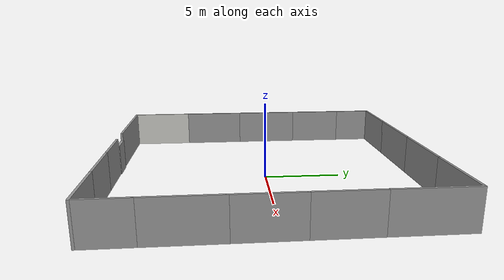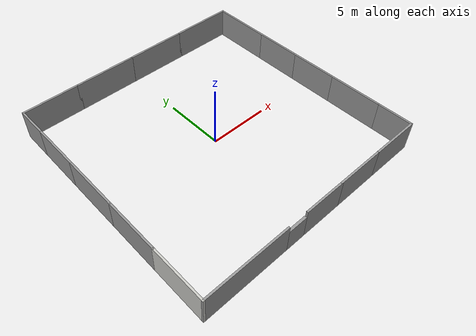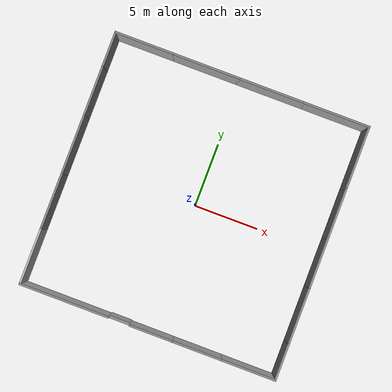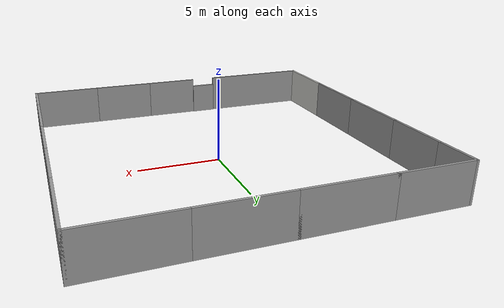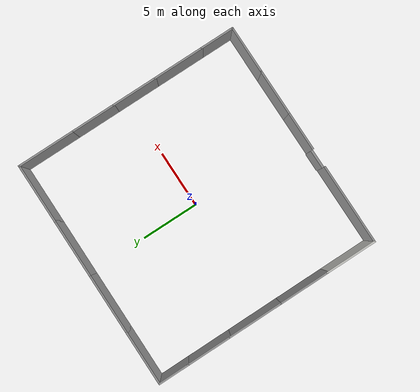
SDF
<?xml version='1.0'?>
<sdf version='1.7'>
  <model name='simple_building'>
    <pose>-0.030091 -0.037653 0 0 -0 0</pose>
    <link name='Door_0'>
      <collision name='Door_0_Collision'>
        <geometry>
          <box>
            <size>1.61657 0.2 2</size>
          </box>
        </geometry>
        <pose>0 0 1 0 -0 0</pose>
      </collision>
      <visual name='Door_0_Visual'>
        <pose>0 0 1 0 -0 0</pose>
        <geometry>
          <box>
            <size>1.61657 0.2 2</size>
          </box>
        </geometry>
        <material>
          <script>
            <uri>file://media/materials/scripts/gazebo.material</uri>
            <name>Gazebo/Grey</name>
          </script>
        </material>
      </visual>
      <pose>-2.23475 -9.85218 0 0 -0 0</pose>
    </link>
    <link name='Wall_0'>
      <collision name='Wall_0_Collision'>
        <geometry>
          <box>
            <size>7 0.15 2.5</size>
          </box>
        </geometry>
        <pose>0 0 1.25 0 -0 0</pose>
      </collision>
      <visual name='Wall_0_Visual'>
        <pose>0 0 1.25 0 -0 0</pose>
        <geometry>
          <box>
            <size>7 0.15 2.5</size>
          </box>
        </geometry>
        <material>
          <script>
            <uri>file://media/materials/scripts/gazebo.material</uri>
            <name>Gazebo/Grey</name>
          </script>
          <ambient>0.333333 0.341176 0.32549 1</ambient>
        </material>
        <meta>
          <layer>0</layer>
        </meta>
      </visual>
      <pose>-6.525 -9.875 0 0 -0 3.14159</pose>
    </link>
    <link name='Wall_1'>
      <collision name='Wall_1_Collision'>
        <geometry>
          <box>
            <size>4.5 0.15 2.5</size>
          </box>
        </geometry>
        <pose>0 0 1.25 0 -0 0</pose>
      </collision>
      <visual name='Wall_1_Visual'>
        <pose>0 0 1.25 0 -0 0</pose>
        <geometry>
          <box>
            <size>4.5 0.15 2.5</size>
          </box>
        </geometry>
        <material>
          <script>
            <uri>file://media/materials/scripts/gazebo.material</uri>
            <name>Gazebo/CeilingTiled</name>
          </script>
          <ambient>0.333333 0.341176 0.32549 1</ambient>
        </material>
        <meta>
          <layer>0</layer>
        </meta>
      </visual>
      <pose>-9.95 -7.7 0 0 -0 1.5708</pose>
    </link>
    <link name='Wall_10'>
      <collision name='Wall_10_Collision'>
        <geometry>
          <box>
            <size>5 0.15 2.5</size>
          </box>
        </geometry>
        <pose>0 0 1.25 0 -0 0</pose>
      </collision>
      <visual name='Wall_10_Visual'>
        <pose>0 0 1.25 0 -0 0</pose>
        <geometry>
          <box>
            <size>5 0.15 2.5</size>
          </box>
        </geometry>
        <material>
          <script>
            <uri>file://media/materials/scripts/gazebo.material</uri>
            <name>Gazebo/Grey</name>
          </script>
          <ambient>0.333333 0.341176 0.32549 1</ambient>
        </material>
        <meta>
          <layer>0</layer>
        </meta>
      </visual>
      <pose>9.95 7.45 0 0 -0 -1.5708</pose>
    </link>
    <link name='Wall_11'>
      <collision name='Wall_11_Collision'>
        <geometry>
          <box>
            <size>4 0.15 2.5</size>
          </box>
        </geometry>
        <pose>0 0 1.25 0 -0 0</pose>
      </collision>
      <visual name='Wall_11_Visual'>
        <pose>0 0 1.25 0 -0 0</pose>
        <geometry>
          <box>
            <size>4 0.15 2.5</size>
          </box>
        </geometry>
        <material>
          <script>
            <uri>file://media/materials/scripts/gazebo.material</uri>
            <name>Gazebo/Grey</name>
          </script>
          <ambient>0.333333 0.341176 0.32549 1</ambient>
        </material>
        <meta>
          <layer>0</layer>
        </meta>
      </visual>
      <pose>9.95 3.1 0 0 -0 -1.5708</pose>
    </link>
    <link name='Wall_12'>
      <collision name='Wall_12_Collision'>
        <geometry>
          <box>
            <size>4 0.15 2.5</size>
          </box>
        </geometry>
        <pose>0 0 1.25 0 -0 0</pose>
      </collision>
      <visual name='Wall_12_Visual'>
        <pose>0 0 1.25 0 -0 0</pose>
        <geometry>
          <box>
            <size>4 0.15 2.5</size>
          </box>
        </geometry>
        <material>
          <script>
            <uri>file://media/materials/scripts/gazebo.material</uri>
            <name>Gazebo/Grey</name>
          </script>
          <ambient>0.333333 0.341176 0.32549 1</ambient>
        </material>
        <meta>
          <layer>0</layer>
        </meta>
      </visual>
      <pose>9.95 -0.75 0 0 -0 -1.5708</pose>
    </link>
    <link name='Wall_13'>
      <collision name='Wall_13_Collision'>
        <geometry>
          <box>
            <size>4.5 0.15 2.5</size>
          </box>
        </geometry>
        <pose>0 0 1.25 0 -0 0</pose>
      </collision>
      <visual name='Wall_13_Visual'>
        <pose>0 0 1.25 0 -0 0</pose>
        <geometry>
          <box>
            <size>4.5 0.15 2.5</size>
          </box>
        </geometry>
        <material>
          <script>
            <uri>file://media/materials/scripts/gazebo.material</uri>
            <name>Gazebo/Grey</name>
          </script>
          <ambient>0.333333 0.341176 0.32549 1</ambient>
        </material>
        <meta>
          <layer>0</layer>
        </meta>
      </visual>
      <pose>9.95 -4.85 0 0 -0 -1.5708</pose>
    </link>
    <link name='Wall_14'>
      <collision name='Wall_14_Collision'>
        <geometry>
          <box>
            <size>3 0.15 2.5</size>
          </box>
        </geometry>
        <pose>0 0 1.25 0 -0 0</pose>
      </collision>
      <visual name='Wall_14_Visual'>
        <pose>0 0 1.25 0 -0 0</pose>
        <geometry>
          <box>
            <size>3 0.15 2.5</size>
          </box>
        </geometry>
        <material>
          <script>
            <uri>file://media/materials/scripts/gazebo.material</uri>
            <name>Gazebo/Grey</name>
          </script>
          <ambient>0.333333 0.341176 0.32549 1</ambient>
        </material>
        <meta>
          <layer>0</layer>
        </meta>
      </visual>
      <pose>9.95 -8.45 0 0 -0 -1.5708</pose>
    </link>
    <link name='Wall_15'>
      <collision name='Wall_15_Collision'>
        <geometry>
          <box>
            <size>4.25 0.15 2.5</size>
          </box>
        </geometry>
        <pose>0 0 1.25 0 -0 0</pose>
      </collision>
      <visual name='Wall_15_Visual'>
        <pose>0 0 1.25 0 -0 0</pose>
        <geometry>
          <box>
            <size>4.25 0.15 2.5</size>
          </box>
        </geometry>
        <material>
          <script>
            <uri>file://media/materials/scripts/gazebo.material</uri>
            <name>Gazebo/Grey</name>
          </script>
          <ambient>0.333333 0.341176 0.32549 1</ambient>
        </material>
        <meta>
          <layer>0</layer>
        </meta>
      </visual>
      <pose>7.9 -9.875 0 0 -0 3.14159</pose>
    </link>
    <link name='Wall_16'>
      <collision name='Wall_16_Collision'>
        <geometry>
          <box>
            <size>4 0.15 2.5</size>
          </box>
        </geometry>
        <pose>0 0 1.25 0 -0 0</pose>
      </collision>
      <visual name='Wall_16_Visual'>
        <pose>0 0 1.25 0 -0 0</pose>
        <geometry>
          <box>
            <size>4 0.15 2.5</size>
          </box>
        </geometry>
        <material>
          <script>
            <uri>file://media/materials/scripts/gazebo.material</uri>
            <name>Gazebo/Grey</name>
          </script>
          <ambient>0.333333 0.341176 0.32549 1</ambient>
        </material>
        <meta>
          <layer>0</layer>
        </meta>
      </visual>
      <pose>3.925 -9.875 0 0 -0 3.14159</pose>
    </link>
    <link name='Wall_17'>
      <collision name='Wall_17_Collision'>
        <geometry>
          <box>
            <size>3.5 0.15 2.5</size>
          </box>
        </geometry>
        <pose>0 0 1.25 0 -0 0</pose>
      </collision>
      <visual name='Wall_17_Visual'>
        <pose>0 0 1.25 0 -0 0</pose>
        <geometry>
          <box>
            <size>3.5 0.15 2.5</size>
          </box>
        </geometry>
        <material>
          <script>
            <uri>file://media/materials/scripts/gazebo.material</uri>
            <name>Gazebo/Grey</name>
          </script>
          <ambient>0.333333 0.341176 0.32549 1</ambient>
        </material>
        <meta>
          <layer>0</layer>
        </meta>
      </visual>
      <pose>0.325 -9.875 0 0 -0 3.14159</pose>
    </link>
    <link name='Wall_2'>
      <collision name='Wall_2_Collision'>
        <geometry>
          <box>
            <size>4.5 0.15 2.5</size>
          </box>
        </geometry>
        <pose>0 0 1.25 0 -0 0</pose>
      </collision>
      <visual name='Wall_2_Visual'>
        <pose>0 0 1.25 0 -0 0</pose>
        <geometry>
          <box>
            <size>4.5 0.15 2.5</size>
          </box>
        </geometry>
        <material>
          <script>
            <uri>file://media/materials/scripts/gazebo.material</uri>
            <name>Gazebo/Grey</name>
          </script>
          <ambient>0.333333 0.341176 0.32549 1</ambient>
        </material>
        <meta>
          <layer>0</layer>
        </meta>
      </visual>
      <pose>-9.95 -3.35 0 0 -0 1.5708</pose>
    </link>
    <link name='Wall_3'>
      <collision name='Wall_3_Collision'>
        <geometry>
          <box>
            <size>4.75 0.15 2.5</size>
          </box>
        </geometry>
        <pose>0 0 1.25 0 -0 0</pose>
      </collision>
      <visual name='Wall_3_Visual'>
        <pose>0 0 1.25 0 -0 0</pose>
        <geometry>
          <box>
            <size>4.75 0.15 2.5</size>
          </box>
        </geometry>
        <material>
          <script>
            <uri>file://media/materials/scripts/gazebo.material</uri>
            <name>Gazebo/Grey</name>
          </script>
          <ambient>0.333333 0.341176 0.32549 1</ambient>
        </material>
        <meta>
          <layer>0</layer>
        </meta>
      </visual>
      <pose>-9.95 1.125 0 0 -0 1.5708</pose>
    </link>
    <link name='Wall_4'>
      <collision name='Wall_4_Collision'>
        <geometry>
          <box>
            <size>4 0.15 2.5</size>
          </box>
        </geometry>
        <pose>0 0 1.25 0 -0 0</pose>
      </collision>
      <visual name='Wall_4_Visual'>
        <pose>0 0 1.25 0 -0 0</pose>
        <geometry>
          <box>
            <size>4 0.15 2.5</size>
          </box>
        </geometry>
        <material>
          <script>
            <uri>file://media/materials/scripts/gazebo.material</uri>
            <name>Gazebo/Grey</name>
          </script>
          <ambient>0.333333 0.341176 0.32549 1</ambient>
        </material>
        <meta>
          <layer>0</layer>
        </meta>
      </visual>
      <pose>-9.95 5.35 0 0 -0 1.5708</pose>
    </link>
    <link name='Wall_5'>
      <collision name='Wall_5_Collision'>
        <geometry>
          <box>
            <size>2.75 0.15 2.5</size>
          </box>
        </geometry>
        <pose>0 0 1.25 0 -0 0</pose>
      </collision>
      <visual name='Wall_5_Visual'>
        <pose>0 0 1.25 0 -0 0</pose>
        <geometry>
          <box>
            <size>2.75 0.15 2.5</size>
          </box>
        </geometry>
        <material>
          <script>
            <uri>file://media/materials/scripts/gazebo.material</uri>
            <name>Gazebo/Grey</name>
          </script>
          <ambient>0.333333 0.341176 0.32549 1</ambient>
        </material>
        <meta>
          <layer>0</layer>
        </meta>
      </visual>
      <pose>-9.95 8.575 0 0 -0 1.5708</pose>
    </link>
    <link name='Wall_6'>
      <collision name='Wall_6_Collision'>
        <geometry>
          <box>
            <size>4.75 0.15 2.5</size>
          </box>
        </geometry>
        <pose>0 0 1.25 0 -0 0</pose>
      </collision>
      <visual name='Wall_6_Visual'>
        <pose>0 0 1.25 0 -0 0</pose>
        <geometry>
          <box>
            <size>4.75 0.15 2.5</size>
          </box>
        </geometry>
        <material>
          <script>
            <uri>file://media/materials/scripts/gazebo.material</uri>
            <name>Gazebo/Grey</name>
          </script>
          <ambient>0.333333 0.341176 0.32549 1</ambient>
        </material>
        <meta>
          <layer>0</layer>
        </meta>
      </visual>
      <pose>-7.65 9.875 0 0 -0 0</pose>
    </link>
    <link name='Wall_7'>
      <collision name='Wall_7_Collision'>
        <geometry>
          <box>
            <size>5.25 0.15 2.5</size>
          </box>
        </geometry>
        <pose>0 0 1.25 0 -0 0</pose>
      </collision>
      <visual name='Wall_7_Visual'>
        <pose>0 0 1.25 0 -0 0</pose>
        <geometry>
          <box>
            <size>5.25 0.15 2.5</size>
          </box>
        </geometry>
        <material>
          <script>
            <uri>file://media/materials/scripts/gazebo.material</uri>
            <name>Gazebo/Grey</name>
          </script>
          <ambient>1 1 1 1</ambient>
        </material>
        <meta>
          <layer>0</layer>
        </meta>
      </visual>
      <pose>-2.8 9.875 0 0 -0 0</pose>
    </link>
    <link name='Wall_8'>
      <collision name='Wall_8_Collision'>
        <geometry>
          <box>
            <size>5.25 0.15 2.5</size>
          </box>
        </geometry>
        <pose>0 0 1.25 0 -0 0</pose>
      </collision>
      <visual name='Wall_8_Visual'>
        <pose>0 0 1.25 0 -0 0</pose>
        <geometry>
          <box>
            <size>5.25 0.15 2.5</size>
          </box>
        </geometry>
        <material>
          <script>
            <uri>file://media/materials/scripts/gazebo.material</uri>
            <name>Gazebo/Grey</name>
          </script>
          <ambient>0.333333 0.341176 0.32549 1</ambient>
        </material>
        <meta>
          <layer>0</layer>
        </meta>
      </visual>
      <pose>2.3 9.875 0 0 -0 0</pose>
    </link>
    <link name='Wall_9'>
      <collision name='Wall_9_Collision'>
        <geometry>
          <box>
            <size>5.25 0.15 2.5</size>
          </box>
        </geometry>
        <pose>0 0 1.25 0 -0 0</pose>
      </collision>
      <visual name='Wall_9_Visual'>
        <pose>0 0 1.25 0 -0 0</pose>
        <geometry>
          <box>
            <size>5.25 0.15 2.5</size>
          </box>
        </geometry>
        <material>
          <script>
            <uri>file://media/materials/scripts/gazebo.material</uri>
            <name>Gazebo/Grey</name>
          </script>
          <ambient>0.333333 0.341176 0.32549 1</ambient>
        </material>
        <meta>
          <layer>0</layer>
        </meta>
      </visual>
      <pose>7.4 9.875 0 0 -0 0</pose>
    </link>
    <static>1</static>
  </model>
</sdf>
